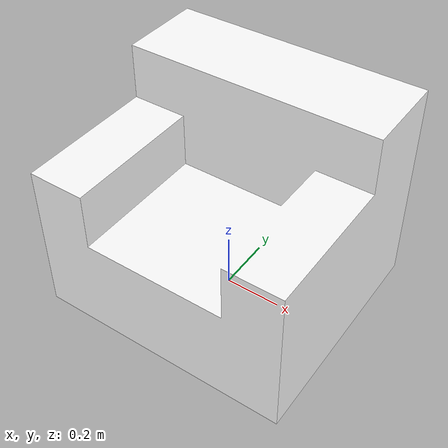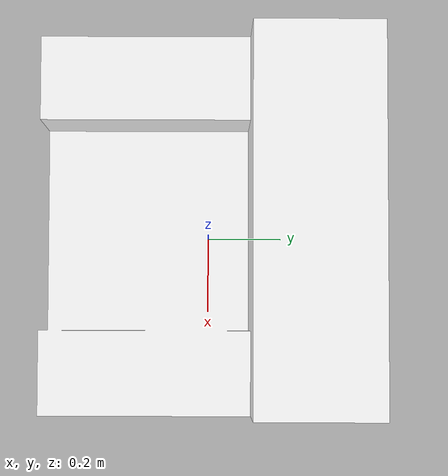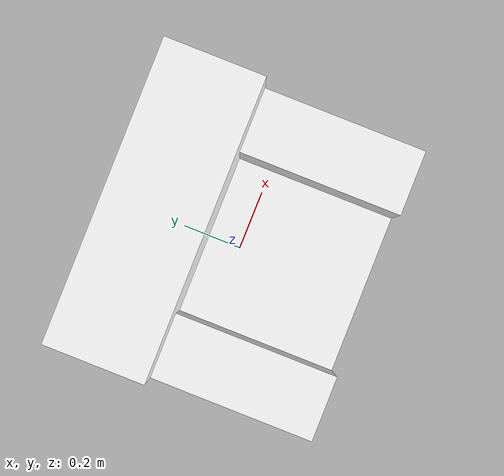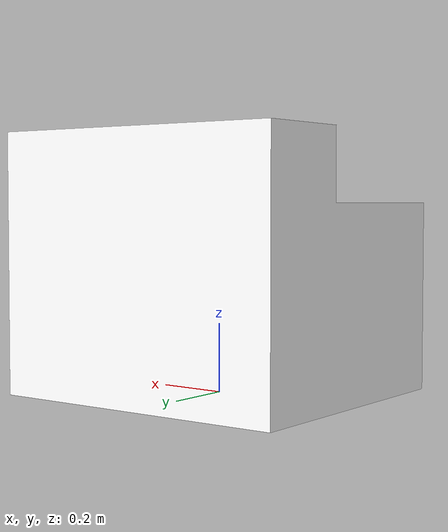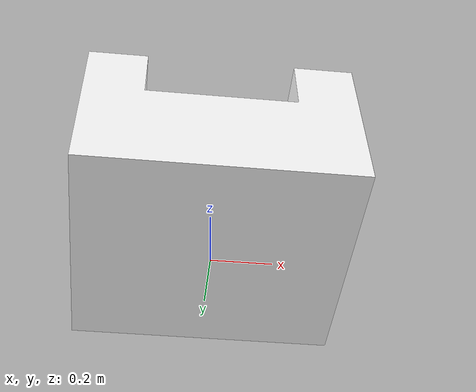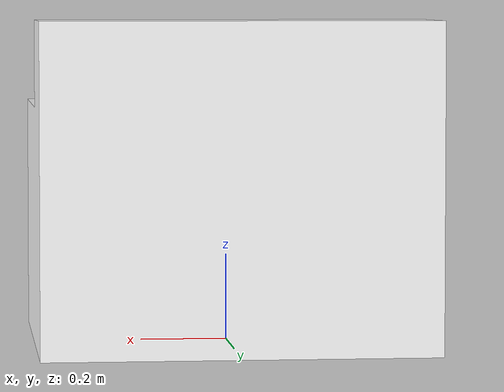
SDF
<?xml version='1.0'?>
<sdf version='1.7'>
  <model name='sofa'>
    <link name='link'>
      <pose>0 0 0 0 0 0</pose>
      <visual name='visual'>
        <geometry>
          <mesh>
            <uri>/root/workspace/self_gazebo_models/sofa/meshes/model.dae</uri>
          </mesh>
        </geometry>
        <material>
          <script>
	          <uri>/root/workspace/self_gazebo_models/sofa/materials/scripts</uri>
            <uri>/root/workspace/self_gazebo_models/sofa/materials/textures</uri>
            <name>Livingroom/sofa</name>
          </script>
          <ambient>1 1 1 1</ambient>
        </material>
      </visual>
      <collision name='collision'>
        <geometry>
          <mesh>
            <uri>/root/workspace/self_gazebo_models/sofa/meshes/model.dae</uri>
            <scale>1 1 1</scale>
          </mesh>
        </geometry>
      </collision>
    </link>
    <static>1</static>
    <allow_auto_disable>1</allow_auto_disable>
  </model>
</sdf>
